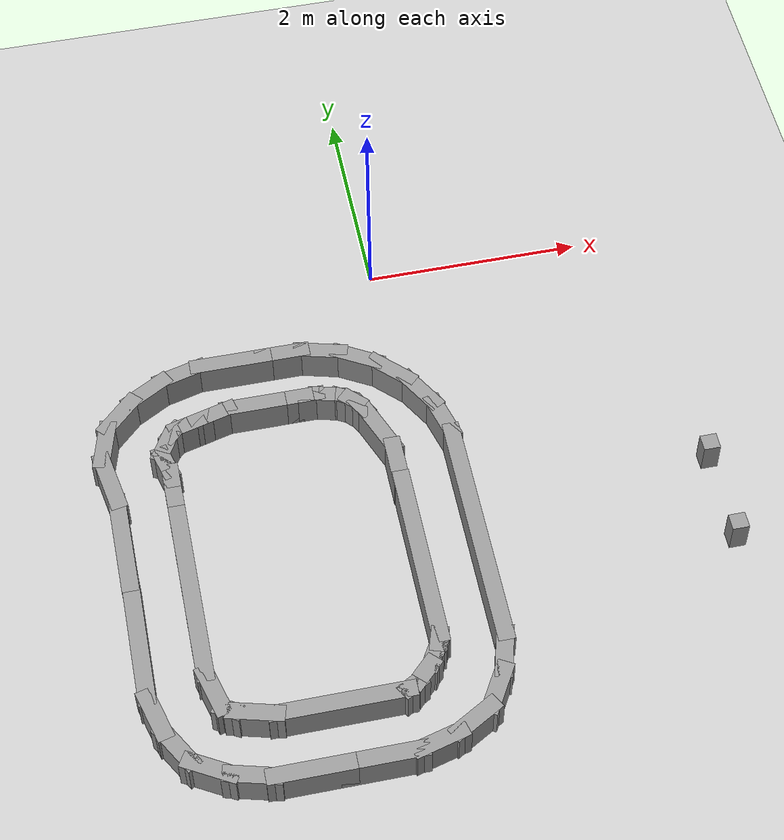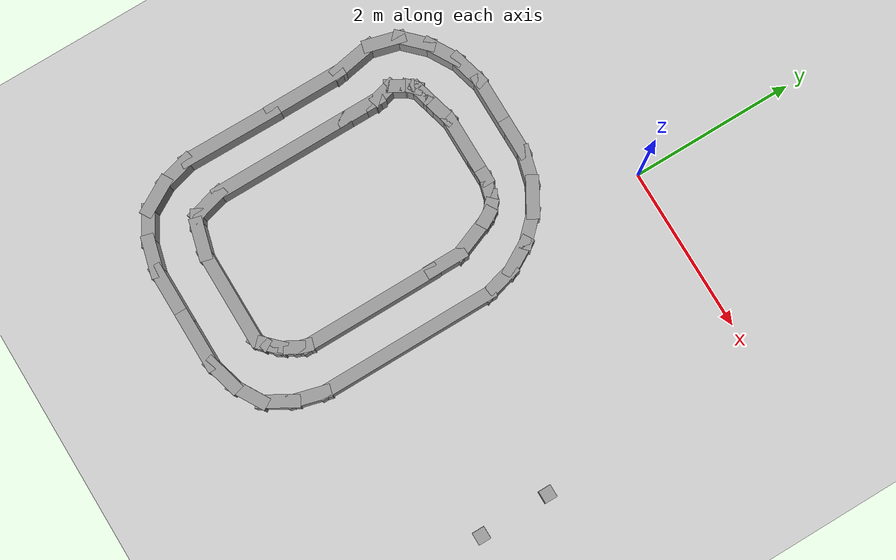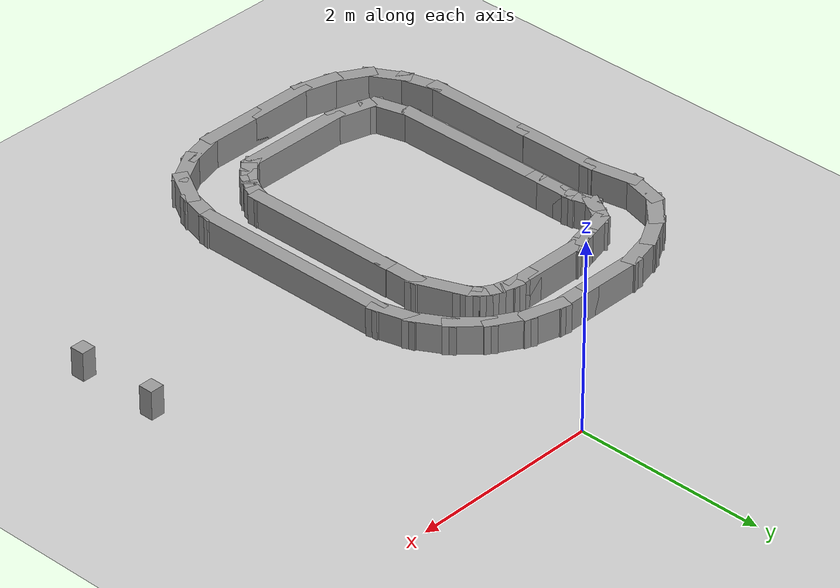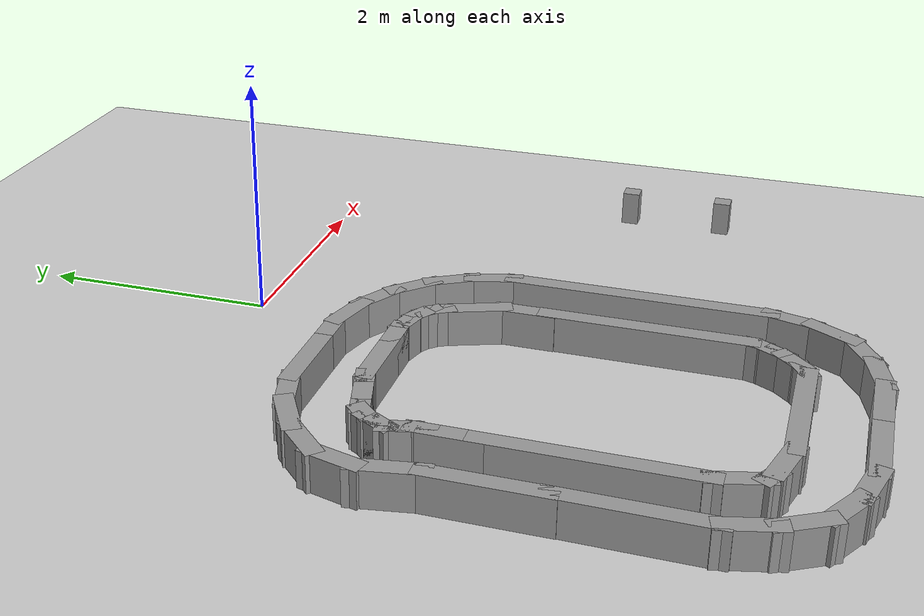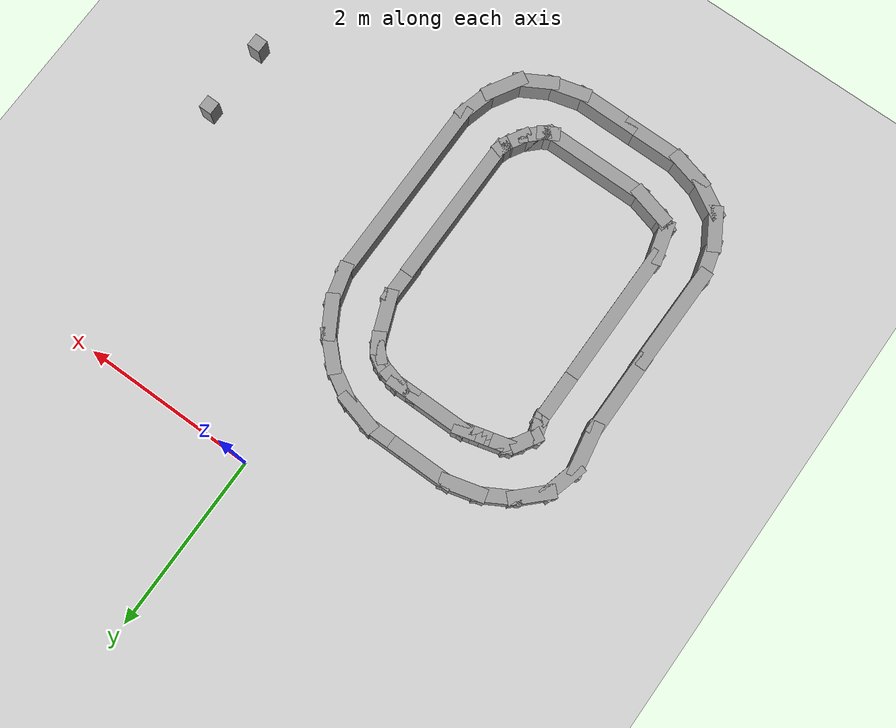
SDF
<?xml version='1.0'?>
<sdf version='1.7'>
  <world name="train_world2">
      <!-- 基础环境 -->
      <include>
          <uri>model://sun</uri>
      </include>

      <include>
          <uri>model://ground_plane</uri>
      </include>

      <!-- 世界物理配置 - 让地面更坚硬 -->
      <physics type="ode">
          <real_time_update_rate>1000</real_time_update_rate>
          <real_time_factor>1</real_time_factor>
          <ode>
              <solver>
                  <type>quick</type>
                  <iters>50</iters>
                  <precon>1</precon>
                  <use_dynamic_moi_rescaling>1</use_dynamic_moi_rescaling>
              </solver>
              <constraints>
                  <cfm>0.00001</cfm>
                  <erp>0.8</erp>
                  <contact_max_correcting_vel>100</contact_max_correcting_vel>
                  <contact_surface_layer>0.001</contact_surface_layer>
              </constraints>
          </ode>
      </physics>
  <model name='O_size'>
    <pose>-0.124916 -2.63931 0 0 -0 0</pose>
    <link name='Wall_0'>
      <collision name='Wall_0_Collision'>
        <geometry>
          <box>
            <size>1.0 0.15 0.3</size>
          </box>
        </geometry>
        <pose>0 0 0.15 0 -0 0</pose>
      </collision>
      <visual name='Wall_0_Visual'>
        <pose>0 0 0.15 0 -0 0</pose>
        <geometry>
          <box>
            <size>1.0 0.15 0.3</size>
          </box>
        </geometry>
        <material>
          <script>
            <uri>file://media/materials/scripts/gazebo.material</uri>
            <name>Gazebo/Grey</name>
          </script>
          <ambient>1 1 1 1</ambient>
        </material>
        <meta>
          <layer>0</layer>
        </meta>
      </visual>
      <pose>-2.57011 -0.115687 0.15 0 -0 -1.5708</pose>
    </link>
    <link name='Wall_10'>
      <collision name='Wall_10_Collision'>
        <geometry>
          <box>
            <size>0.5 0.15 0.3</size>
          </box>
        </geometry>
        <pose>0 0 0.15 0 -0 0</pose>
      </collision>
      <visual name='Wall_10_Visual'>
        <pose>0 0 0.15 0 -0 0</pose>
        <geometry>
          <box>
            <size>0.5 0.15 0.3</size>
          </box>
        </geometry>
        <material>
          <script>
            <uri>file://media/materials/scripts/gazebo.material</uri>
            <name>Gazebo/Grey</name>
          </script>
          <ambient>1 1 1 1</ambient>
        </material>
        <meta>
          <layer>0</layer>
        </meta>
      </visual>
      <pose>0.021314 -2.36937 0.15 0 -0 0.523599</pose>
    </link>
    <link name='Wall_100'>
      <collision name='Wall_100_Collision'>
        <geometry>
          <box>
            <size>0.25 0.15 0.3</size>
          </box>
        </geometry>
        <pose>0 0 0.15 0 -0 0</pose>
      </collision>
      <visual name='Wall_100_Visual'>
        <pose>0 0 0.15 0 -0 0</pose>
        <geometry>
          <box>
            <size>0.25 0.15 0.3</size>
          </box>
        </geometry>
        <material>
          <script>
            <uri>file://media/materials/scripts/gazebo.material</uri>
            <name>Gazebo/Grey</name>
          </script>
          <ambient>1 1 1 1</ambient>
        </material>
        <meta>
          <layer>0</layer>
        </meta>
      </visual>
      <pose>-0.720705 1.09886 0.15 0 -0 0</pose>
    </link>
    <link name='Wall_101'>
      <collision name='Wall_101_Collision'>
        <geometry>
          <box>
            <size>0.25 0.15 0.3</size>
          </box>
        </geometry>
        <pose>0 0 0.15 0 -0 0</pose>
      </collision>
      <visual name='Wall_101_Visual'>
        <pose>0 0 0.15 0 -0 0</pose>
        <geometry>
          <box>
            <size>0.25 0.15 0.3</size>
          </box>
        </geometry>
        <material>
          <script>
            <uri>file://media/materials/scripts/gazebo.material</uri>
            <name>Gazebo/Grey</name>
          </script>
          <ambient>1 1 1 1</ambient>
        </material>
        <meta>
          <layer>0</layer>
        </meta>
      </visual>
      <pose>-0.622409 1.08592 0.15 0 -0 -0.261799</pose>
    </link>
    <link name='Wall_102'>
      <collision name='Wall_102_Collision'>
        <geometry>
          <box>
            <size>0.25 0.15 0.3</size>
          </box>
        </geometry>
        <pose>0 0 0.15 0 -0 0</pose>
      </collision>
      <visual name='Wall_102_Visual'>
        <pose>0 0 0.15 0 -0 0</pose>
        <geometry>
          <box>
            <size>0.25 0.15 0.3</size>
          </box>
        </geometry>
        <material>
          <script>
            <uri>file://media/materials/scripts/gazebo.material</uri>
            <name>Gazebo/Grey</name>
          </script>
          <ambient>1 1 1 1</ambient>
        </material>
        <meta>
          <layer>0</layer>
        </meta>
      </visual>
      <pose>-0.525816 1.06004 0.15 0 -0 -0.261799</pose>
    </link>
    <link name='Wall_103'>
      <collision name='Wall_103_Collision'>
        <geometry>
          <box>
            <size>0.25 0.15 0.3</size>
          </box>
        </geometry>
        <pose>0 0 0.15 0 -0 0</pose>
      </collision>
      <visual name='Wall_103_Visual'>
        <pose>0 0 0.15 0 -0 0</pose>
        <geometry>
          <box>
            <size>0.25 0.15 0.3</size>
          </box>
        </geometry>
        <material>
          <script>
            <uri>file://media/materials/scripts/gazebo.material</uri>
            <name>Gazebo/Grey</name>
          </script>
          <ambient>1 1 1 1</ambient>
        </material>
        <meta>
          <layer>0</layer>
        </meta>
      </visual>
      <pose>-0.434218 1.0221 0.15 0 -0 -0.523599</pose>
    </link>
    <link name='Wall_104'>
      <collision name='Wall_104_Collision'>
        <geometry>
          <box>
            <size>0.25 0.15 0.3</size>
          </box>
        </geometry>
        <pose>0 0 0.15 0 -0 0</pose>
      </collision>
      <visual name='Wall_104_Visual'>
        <pose>0 0 0.15 0 -0 0</pose>
        <geometry>
          <box>
            <size>0.25 0.15 0.3</size>
          </box>
        </geometry>
        <material>
          <script>
            <uri>file://media/materials/scripts/gazebo.material</uri>
            <name>Gazebo/Grey</name>
          </script>
          <ambient>1 1 1 1</ambient>
        </material>
        <meta>
          <layer>0</layer>
        </meta>
      </visual>
      <pose>-0.355562 0.961745 0.15 0 -0 -0.785398</pose>
    </link>
    <link name='Wall_105'>
      <collision name='Wall_105_Collision'>
        <geometry>
          <box>
            <size>0.25 0.15 0.3</size>
          </box>
        </geometry>
        <pose>0 0 0.15 0 -0 0</pose>
      </collision>
      <visual name='Wall_105_Visual'>
        <pose>0 0 0.15 0 -0 0</pose>
        <geometry>
          <box>
            <size>0.25 0.15 0.3</size>
          </box>
        </geometry>
        <material>
          <script>
            <uri>file://media/materials/scripts/gazebo.material</uri>
            <name>Gazebo/Grey</name>
          </script>
          <ambient>1 1 1 1</ambient>
        </material>
        <meta>
          <layer>0</layer>
        </meta>
      </visual>
      <pose>-0.295206 0.883089 0.15 0 -0 -1.0472</pose>
    </link>
    <link name='Wall_106'>
      <collision name='Wall_106_Collision'>
        <geometry>
          <box>
            <size>0.60643 0.15 0.3</size>
          </box>
        </geometry>
        <pose>0 0 0.15 0 -0 0</pose>
      </collision>
      <visual name='Wall_106_Visual'>
        <pose>0 0 0.15 0 -0 0</pose>
        <geometry>
          <box>
            <size>0.60643 0.15 0.3</size>
          </box>
        </geometry>
        <material>
          <script>
            <uri>file://media/materials/scripts/gazebo.material</uri>
            <name>Gazebo/Grey</name>
          </script>
          <ambient>1 1 1 1</ambient>
        </material>
        <meta>
          <layer>0</layer>
        </meta>
      </visual>
      <pose>-0.186826 0.62735 0.15 0 -0 -1.19678</pose>
    </link>
    <link name='Wall_11'>
      <collision name='Wall_11_Collision'>
        <geometry>
          <box>
            <size>0.5 0.15 0.3</size>
          </box>
        </geometry>
        <pose>0 0 0.15 0 -0 0</pose>
      </collision>
      <visual name='Wall_11_Visual'>
        <pose>0 0 0.15 0 -0 0</pose>
        <geometry>
          <box>
            <size>0.5 0.15 0.3</size>
          </box>
        </geometry>
        <material>
          <script>
            <uri>file://media/materials/scripts/gazebo.material</uri>
            <name>Gazebo/Grey</name>
          </script>
          <ambient>1 1 1 1</ambient>
        </material>
        <meta>
          <layer>0</layer>
        </meta>
      </visual>
      <pose>0.260368 -2.13032 0.15 0 -0 1.0472</pose>
    </link>
    <link name='Wall_12'>
      <collision name='Wall_12_Collision'>
        <geometry>
          <box>
            <size>0.5 0.15 0.3</size>
          </box>
        </geometry>
        <pose>0 0 0.15 0 -0 0</pose>
      </collision>
      <visual name='Wall_12_Visual'>
        <pose>0 0 0.15 0 -0 0</pose>
        <geometry>
          <box>
            <size>0.5 0.15 0.3</size>
          </box>
        </geometry>
        <material>
          <script>
            <uri>file://media/materials/scripts/gazebo.material</uri>
            <name>Gazebo/Grey</name>
          </script>
          <ambient>1 1 1 1</ambient>
        </material>
        <meta>
          <layer>0</layer>
        </meta>
      </visual>
      <pose>0.393162 -1.80972 0.15 0 -0 1.309</pose>
    </link>
    <link name='Wall_13'>
      <collision name='Wall_13_Collision'>
        <geometry>
          <box>
            <size>2.25 0.15 0.3</size>
          </box>
        </geometry>
        <pose>0 0 0.15 0 -0 0</pose>
      </collision>
      <visual name='Wall_13_Visual'>
        <pose>0 0 0.15 0 -0 0</pose>
        <geometry>
          <box>
            <size>2.25 0.15 0.3</size>
          </box>
        </geometry>
        <material>
          <script>
            <uri>file://media/materials/scripts/gazebo.material</uri>
            <name>Gazebo/Grey</name>
          </script>
          <ambient>1 1 1 1</ambient>
        </material>
        <meta>
          <layer>0</layer>
        </meta>
      </visual>
      <pose>0.438455 -0.590687 0.15 0 -0 1.5708</pose>
    </link>
    <link name='Wall_14'>
      <collision name='Wall_14_Collision'>
        <geometry>
          <box>
            <size>0.5 0.15 0.3</size>
          </box>
        </geometry>
        <pose>0 0 0.15 0 -0 0</pose>
      </collision>
      <visual name='Wall_14_Visual'>
        <pose>0 0 0.15 0 -0 0</pose>
        <geometry>
          <box>
            <size>0.5 0.15 0.3</size>
          </box>
        </geometry>
        <material>
          <script>
            <uri>file://media/materials/scripts/gazebo.material</uri>
            <name>Gazebo/Grey</name>
          </script>
          <ambient>1 1 1 1</ambient>
        </material>
        <meta>
          <layer>0</layer>
        </meta>
      </visual>
      <pose>0.393162 0.62835 0.15 0 -0 1.8326</pose>
    </link>
    <link name='Wall_15'>
      <collision name='Wall_15_Collision'>
        <geometry>
          <box>
            <size>0.5 0.15 0.3</size>
          </box>
        </geometry>
        <pose>0 0 0.15 0 -0 0</pose>
      </collision>
      <visual name='Wall_15_Visual'>
        <pose>0 0 0.15 0 -0 0</pose>
        <geometry>
          <box>
            <size>0.5 0.15 0.3</size>
          </box>
        </geometry>
        <material>
          <script>
            <uri>file://media/materials/scripts/gazebo.material</uri>
            <name>Gazebo/Grey</name>
          </script>
          <ambient>1 1 1 1</ambient>
        </material>
        <meta>
          <layer>0</layer>
        </meta>
      </visual>
      <pose>0.260368 0.948941 0.15 0 -0 2.0944</pose>
    </link>
    <link name='Wall_16'>
      <collision name='Wall_16_Collision'>
        <geometry>
          <box>
            <size>0.5 0.15 0.3</size>
          </box>
        </geometry>
        <pose>0 0 0.15 0 -0 0</pose>
      </collision>
      <visual name='Wall_16_Visual'>
        <pose>0 0 0.15 0 -0 0</pose>
        <geometry>
          <box>
            <size>0.5 0.15 0.3</size>
          </box>
        </geometry>
        <material>
          <script>
            <uri>file://media/materials/scripts/gazebo.material</uri>
            <name>Gazebo/Grey</name>
          </script>
          <ambient>1 1 1 1</ambient>
        </material>
        <meta>
          <layer>0</layer>
        </meta>
      </visual>
      <pose>0.049125 1.22424 0.15 0 -0 2.35619</pose>
    </link>
    <link name='Wall_17'>
      <collision name='Wall_17_Collision'>
        <geometry>
          <box>
            <size>0.5 0.15 0.3</size>
          </box>
        </geometry>
        <pose>0 0 0.15 0 -0 0</pose>
      </collision>
      <visual name='Wall_17_Visual'>
        <pose>0 0 0.15 0 -0 0</pose>
        <geometry>
          <box>
            <size>0.5 0.15 0.3</size>
          </box>
        </geometry>
        <material>
          <script>
            <uri>file://media/materials/scripts/gazebo.material</uri>
            <name>Gazebo/Grey</name>
          </script>
          <ambient>1 1 1 1</ambient>
        </material>
        <meta>
          <layer>0</layer>
        </meta>
      </visual>
      <pose>-0.226173 1.43548 0.15 0 -0 2.61799</pose>
    </link>
    <link name='Wall_18'>
      <collision name='Wall_18_Collision'>
        <geometry>
          <box>
            <size>0.5 0.15 0.3</size>
          </box>
        </geometry>
        <pose>0 0 0.15 0 -0 0</pose>
      </collision>
      <visual name='Wall_18_Visual'>
        <pose>0 0 0.15 0 -0 0</pose>
        <geometry>
          <box>
            <size>0.5 0.15 0.3</size>
          </box>
        </geometry>
        <material>
          <script>
            <uri>file://media/materials/scripts/gazebo.material</uri>
            <name>Gazebo/Grey</name>
          </script>
          <ambient>1 1 1 1</ambient>
        </material>
        <meta>
          <layer>0</layer>
        </meta>
      </visual>
      <pose>-0.546765 1.56828 0.15 0 -0 2.87979</pose>
    </link>
    <link name='Wall_19'>
      <collision name='Wall_19_Collision'>
        <geometry>
          <box>
            <size>0.5 0.15 0.3</size>
          </box>
        </geometry>
        <pose>0 0 0.15 0 -0 0</pose>
      </collision>
      <visual name='Wall_19_Visual'>
        <pose>0 0 0.15 0 -0 0</pose>
        <geometry>
          <box>
            <size>0.5 0.15 0.3</size>
          </box>
        </geometry>
        <material>
          <script>
            <uri>file://media/materials/scripts/gazebo.material</uri>
            <name>Gazebo/Grey</name>
          </script>
          <ambient>1 1 1 1</ambient>
        </material>
        <meta>
          <layer>0</layer>
        </meta>
      </visual>
      <pose>-0.890802 1.61357 0.15 0 -0 3.14159</pose>
    </link>
    <link name='Wall_2'>
      <collision name='Wall_2_Collision'>
        <geometry>
          <box>
            <size>1.25 0.15 0.3</size>
          </box>
        </geometry>
        <pose>0 0 0.15 0 -0 0</pose>
      </collision>
      <visual name='Wall_2_Visual'>
        <pose>0 0 0.15 0 -0 0</pose>
        <geometry>
          <box>
            <size>1.25 0.15 0.3</size>
          </box>
        </geometry>
        <material>
          <script>
            <uri>file://media/materials/scripts/gazebo.material</uri>
            <name>Gazebo/Grey</name>
          </script>
          <ambient>1 1 1 1</ambient>
        </material>
        <meta>
          <layer>0</layer>
        </meta>
      </visual>
      <pose>-2.57011 -1.09069 0.15 0 -0 -1.57984</pose>
    </link>
    <link name='Wall_20'>
      <collision name='Wall_20_Collision'>
        <geometry>
          <box>
            <size>0.75 0.15 0.3</size>
          </box>
        </geometry>
        <pose>0 0 0.15 0 -0 0</pose>
      </collision>
      <visual name='Wall_20_Visual'>
        <pose>0 0 0.15 0 -0 0</pose>
        <geometry>
          <box>
            <size>0.75 0.15 0.3</size>
          </box>
        </geometry>
        <material>
          <script>
            <uri>file://media/materials/scripts/gazebo.material</uri>
            <name>Gazebo/Grey</name>
          </script>
          <ambient>1 1 1 1</ambient>
        </material>
        <meta>
          <layer>0</layer>
        </meta>
      </visual>
      <pose>-1.3658 1.61357 0.15 0 -0 3.14159</pose>
    </link>
    <link name='Wall_21'>
      <collision name='Wall_21_Collision'>
        <geometry>
          <box>
            <size>0.5 0.15 0.3</size>
          </box>
        </geometry>
        <pose>0 0 0.15 0 -0 0</pose>
      </collision>
      <visual name='Wall_21_Visual'>
        <pose>0 0 0.15 0 -0 0</pose>
        <geometry>
          <box>
            <size>0.5 0.15 0.3</size>
          </box>
        </geometry>
        <material>
          <script>
            <uri>file://media/materials/scripts/gazebo.material</uri>
            <name>Gazebo/Grey</name>
          </script>
          <ambient>1 1 1 1</ambient>
        </material>
        <meta>
          <layer>0</layer>
        </meta>
      </visual>
      <pose>-1.83484 1.56828 0.15 0 -0 -2.87979</pose>
    </link>
    <link name='Wall_22'>
      <collision name='Wall_22_Collision'>
        <geometry>
          <box>
            <size>0.5 0.15 0.3</size>
          </box>
        </geometry>
        <pose>0 0 0.15 0 -0 0</pose>
      </collision>
      <visual name='Wall_22_Visual'>
        <pose>0 0 0.15 0 -0 0</pose>
        <geometry>
          <box>
            <size>0.5 0.15 0.3</size>
          </box>
        </geometry>
        <material>
          <script>
            <uri>file://media/materials/scripts/gazebo.material</uri>
            <name>Gazebo/Grey</name>
          </script>
          <ambient>1 1 1 1</ambient>
        </material>
        <meta>
          <layer>0</layer>
        </meta>
      </visual>
      <pose>-2.15543 1.43548 0.15 0 -0 -2.61799</pose>
    </link>
    <link name='Wall_23'>
      <collision name='Wall_23_Collision'>
        <geometry>
          <box>
            <size>0.5 0.15 0.3</size>
          </box>
        </geometry>
        <pose>0 0 0.15 0 -0 0</pose>
      </collision>
      <visual name='Wall_23_Visual'>
        <pose>0 0 0.15 0 -0 0</pose>
        <geometry>
          <box>
            <size>0.5 0.15 0.3</size>
          </box>
        </geometry>
        <material>
          <script>
            <uri>file://media/materials/scripts/gazebo.material</uri>
            <name>Gazebo/Grey</name>
          </script>
          <ambient>1 1 1 1</ambient>
        </material>
        <meta>
          <layer>0</layer>
        </meta>
      </visual>
      <pose>-2.43073 1.22424 0.15 0 -0 -2.35619</pose>
    </link>
    <link name='Wall_24'>
      <collision name='Wall_24_Collision'>
        <geometry>
          <box>
            <size>0.5 0.15 0.3</size>
          </box>
        </geometry>
        <pose>0 0 0.15 0 -0 0</pose>
      </collision>
      <visual name='Wall_24_Visual'>
        <pose>0 0 0.15 0 -0 0</pose>
        <geometry>
          <box>
            <size>0.5 0.15 0.3</size>
          </box>
        </geometry>
        <material>
          <script>
            <uri>file://media/materials/scripts/gazebo.material</uri>
            <name>Gazebo/Grey</name>
          </script>
          <ambient>1 1 1 1</ambient>
        </material>
        <meta>
          <layer>0</layer>
        </meta>
      </visual>
      <pose>-2.59977 0.931459 0.15 0 -0 -1.8326</pose>
    </link>
    <link name='Wall_25'>
      <collision name='Wall_25_Collision'>
        <geometry>
          <box>
            <size>0.610103 0.15 0.3</size>
          </box>
        </geometry>
        <pose>0 0 0.15 0 -0 0</pose>
      </collision>
      <visual name='Wall_25_Visual'>
        <pose>0 0 0.15 0 -0 0</pose>
        <geometry>
          <box>
            <size>0.610103 0.15 0.3</size>
          </box>
        </geometry>
        <material>
          <script>
            <uri>file://media/materials/scripts/gazebo.material</uri>
            <name>Gazebo/Grey</name>
          </script>
          <ambient>1 1 1 1</ambient>
        </material>
        <meta>
          <layer>0</layer>
        </meta>
      </visual>
      <pose>-2.6051 0.535867 0.15 0 -0 -1.39621</pose>
    </link>
    <link name='Wall_27'>
      <collision name='Wall_27_Collision'>
        <geometry>
          <box>
            <size>0.15 0.15 0.3</size>
          </box>
        </geometry>
        <pose>0 0 0.15 0 -0 0</pose>
      </collision>
      <visual name='Wall_27_Visual'>
        <pose>0 0 0.15 0 -0 0</pose>
        <geometry>
          <box>
            <size>0.15 0.15 0.3</size>
          </box>
        </geometry>
        <material>
          <script>
            <uri>file://media/materials/scripts/gazebo.material</uri>
            <name>Gazebo/Grey</name>
          </script>
          <ambient>1 1 1 1</ambient>
        </material>
        <meta>
          <layer>0</layer>
        </meta>
      </visual>
      <pose>2.65197 -0.130937 0.15 0 -0 0</pose>
    </link>
    <link name='Wall_3'>
      <collision name='Wall_3_Collision'>
        <geometry>
          <box>
            <size>0.5 0.15 0.3</size>
          </box>
        </geometry>
        <pose>0 0 0.15 0 -0 0</pose>
      </collision>
      <visual name='Wall_3_Visual'>
        <pose>0 0 0.15 0 -0 0</pose>
        <geometry>
          <box>
            <size>0.5 0.15 0.3</size>
          </box>
        </geometry>
        <material>
          <script>
            <uri>file://media/materials/scripts/gazebo.material</uri>
            <name>Gazebo/Grey</name>
          </script>
          <ambient>1 1 1 1</ambient>
        </material>
        <meta>
          <layer>0</layer>
        </meta>
      </visual>
      <pose>-2.52979 -1.80972 0.15 0 -0 -1.309</pose>
    </link>
    <link name='Wall_35'>
      <collision name='Wall_35_Collision'>
        <geometry>
          <box>
            <size>0.15 0.15 0.3</size>
          </box>
        </geometry>
        <pose>0 0 0.15 0 -0 0</pose>
      </collision>
      <visual name='Wall_35_Visual'>
        <pose>0 0 0.15 0 -0 0</pose>
        <geometry>
          <box>
            <size>0.15 0.15 0.3</size>
          </box>
        </geometry>
        <material>
          <script>
            <uri>file://media/materials/scripts/gazebo.material</uri>
            <name>Gazebo/Grey</name>
          </script>
          <ambient>1 1 1 1</ambient>
        </material>
        <meta>
          <layer>0</layer>
        </meta>
      </visual>
      <pose>2.66192 -0.980937 0.15 0 -0 0</pose>
    </link>
    <link name='Wall_4'>
      <collision name='Wall_4_Collision'>
        <geometry>
          <box>
            <size>0.5 0.15 0.3</size>
          </box>
        </geometry>
        <pose>0 0 0.15 0 -0 0</pose>
      </collision>
      <visual name='Wall_4_Visual'>
        <pose>0 0 0.15 0 -0 0</pose>
        <geometry>
          <box>
            <size>0.5 0.15 0.3</size>
          </box>
        </geometry>
        <material>
          <script>
            <uri>file://media/materials/scripts/gazebo.material</uri>
            <name>Gazebo/Grey</name>
          </script>
          <ambient>1 1 1 1</ambient>
        </material>
        <meta>
          <layer>0</layer>
        </meta>
      </visual>
      <pose>-2.397 -2.13032 0.15 0 -0 -1.0472</pose>
    </link>
    <link name='Wall_48'>
      <collision name='Wall_48_Collision'>
        <geometry>
          <box>
            <size>1.75 0.15 0.3</size>
          </box>
        </geometry>
        <pose>0 0 0.15 0 -0 0</pose>
      </collision>
      <visual name='Wall_48_Visual'>
        <pose>0 0 0.15 0 -0 0</pose>
        <geometry>
          <box>
            <size>1.75 0.15 0.3</size>
          </box>
        </geometry>
        <material>
          <script>
            <uri>file://media/materials/scripts/gazebo.material</uri>
            <name>Gazebo/Grey</name>
          </script>
          <ambient>1 1 1 1</ambient>
        </material>
        <meta>
          <layer>0</layer>
        </meta>
      </visual>
      <pose>-2.07261 -0.717646 0.15 0 -0 -1.5708</pose>
    </link>
    <link name='Wall_5'>
      <collision name='Wall_5_Collision'>
        <geometry>
          <box>
            <size>0.5 0.15 0.3</size>
          </box>
        </geometry>
        <pose>0 0 0.15 0 -0 0</pose>
      </collision>
      <visual name='Wall_5_Visual'>
        <pose>0 0 0.15 0 -0 0</pose>
        <geometry>
          <box>
            <size>0.5 0.15 0.3</size>
          </box>
        </geometry>
        <material>
          <script>
            <uri>file://media/materials/scripts/gazebo.material</uri>
            <name>Gazebo/Grey</name>
          </script>
          <ambient>1 1 1 1</ambient>
        </material>
        <meta>
          <layer>0</layer>
        </meta>
      </visual>
      <pose>-2.15794 -2.36937 0.15 0 -0 -0.523599</pose>
    </link>
    <link name='Wall_50'>
      <collision name='Wall_50_Collision'>
        <geometry>
          <box>
            <size>0.5 0.15 0.3</size>
          </box>
        </geometry>
        <pose>0 0 0.15 0 -0 0</pose>
      </collision>
      <visual name='Wall_50_Visual'>
        <pose>0 0 0.15 0 -0 0</pose>
        <geometry>
          <box>
            <size>0.5 0.15 0.3</size>
          </box>
        </geometry>
        <material>
          <script>
            <uri>file://media/materials/scripts/gazebo.material</uri>
            <name>Gazebo/Grey</name>
          </script>
          <ambient>1 1 1 1</ambient>
        </material>
        <meta>
          <layer>0</layer>
        </meta>
      </visual>
      <pose>-2.02732 -1.68668 0.15 0 -0 -1.309</pose>
    </link>
    <link name='Wall_57'>
      <collision name='Wall_57_Collision'>
        <geometry>
          <box>
            <size>0.25 0.15 0.3</size>
          </box>
        </geometry>
        <pose>0 0 0.15 0 -0 0</pose>
      </collision>
      <visual name='Wall_57_Visual'>
        <pose>0 0 0.15 0 -0 0</pose>
        <geometry>
          <box>
            <size>0.25 0.15 0.3</size>
          </box>
        </geometry>
        <material>
          <script>
            <uri>file://media/materials/scripts/gazebo.material</uri>
            <name>Gazebo/Grey</name>
          </script>
          <ambient>1 1 1 1</ambient>
        </material>
        <meta>
          <layer>0</layer>
        </meta>
      </visual>
      <pose>-1.93873 -1.88072 0.15 0 -0 -0.523599</pose>
    </link>
    <link name='Wall_58'>
      <collision name='Wall_58_Collision'>
        <geometry>
          <box>
            <size>0.5 0.15 0.3</size>
          </box>
        </geometry>
        <pose>0 0 0.15 0 -0 0</pose>
      </collision>
      <visual name='Wall_58_Visual'>
        <pose>0 0 0.15 0 -0 0</pose>
        <geometry>
          <box>
            <size>0.5 0.15 0.3</size>
          </box>
        </geometry>
        <material>
          <script>
            <uri>file://media/materials/scripts/gazebo.material</uri>
            <name>Gazebo/Grey</name>
          </script>
          <ambient>1 1 1 1</ambient>
        </material>
        <meta>
          <layer>0</layer>
        </meta>
      </visual>
      <pose>-1.72639 -1.95101 0.15 0 -0 -0.261799</pose>
    </link>
    <link name='Wall_59'>
      <collision name='Wall_59_Collision'>
        <geometry>
          <box>
            <size>1.25 0.15 0.3</size>
          </box>
        </geometry>
        <pose>0 0 0.15 0 -0 0</pose>
      </collision>
      <visual name='Wall_59_Visual'>
        <pose>0 0 0.15 0 -0 0</pose>
        <geometry>
          <box>
            <size>1.25 0.15 0.3</size>
          </box>
        </geometry>
        <material>
          <script>
            <uri>file://media/materials/scripts/gazebo.material</uri>
            <name>Gazebo/Grey</name>
          </script>
          <ambient>1 1 1 1</ambient>
        </material>
        <meta>
          <layer>0</layer>
        </meta>
      </visual>
      <pose>-1.00735 -1.99631 0.15 0 -0 0</pose>
    </link>
    <link name='Wall_6'>
      <collision name='Wall_6_Collision'>
        <geometry>
          <box>
            <size>0.5 0.15 0.3</size>
          </box>
        </geometry>
        <pose>0 0 0.15 0 -0 0</pose>
      </collision>
      <visual name='Wall_6_Visual'>
        <pose>0 0 0.15 0 -0 0</pose>
        <geometry>
          <box>
            <size>0.5 0.15 0.3</size>
          </box>
        </geometry>
        <material>
          <script>
            <uri>file://media/materials/scripts/gazebo.material</uri>
            <name>Gazebo/Grey</name>
          </script>
          <ambient>1 1 1 1</ambient>
        </material>
        <meta>
          <layer>0</layer>
        </meta>
      </visual>
      <pose>-1.83735 -2.50216 0.15 0 -0 -0.261799</pose>
    </link>
    <link name='Wall_7'>
      <collision name='Wall_7_Collision'>
        <geometry>
          <box>
            <size>0.75 0.15 0.3</size>
          </box>
        </geometry>
        <pose>0 0 0.15 0 -0 0</pose>
      </collision>
      <visual name='Wall_7_Visual'>
        <pose>0 0 0.15 0 -0 0</pose>
        <geometry>
          <box>
            <size>0.75 0.15 0.3</size>
          </box>
        </geometry>
        <material>
          <script>
            <uri>file://media/materials/scripts/gazebo.material</uri>
            <name>Gazebo/Grey</name>
          </script>
          <ambient>1 1 1 1</ambient>
        </material>
        <meta>
          <layer>0</layer>
        </meta>
      </visual>
      <pose>-1.36831 -2.54746 0.15 0 -0 0</pose>
    </link>
    <link name='Wall_75'>
      <collision name='Wall_75_Collision'>
        <geometry>
          <box>
            <size>0.25 0.15 0.3</size>
          </box>
        </geometry>
        <pose>0 0 0.15 0 -0 0</pose>
      </collision>
      <visual name='Wall_75_Visual'>
        <pose>0 0 0.15 0 -0 0</pose>
        <geometry>
          <box>
            <size>0.25 0.15 0.3</size>
          </box>
        </geometry>
        <material>
          <script>
            <uri>file://media/materials/scripts/gazebo.material</uri>
            <name>Gazebo/Grey</name>
          </script>
          <ambient>1 1 1 1</ambient>
        </material>
        <meta>
          <layer>0</layer>
        </meta>
      </visual>
      <pose>-0.41405 -1.97131 0.15 0 -0 0.523599</pose>
    </link>
    <link name='Wall_76'>
      <collision name='Wall_76_Collision'>
        <geometry>
          <box>
            <size>0.25 0.15 0.3</size>
          </box>
        </geometry>
        <pose>0 0 0.15 0 -0 0</pose>
      </collision>
      <visual name='Wall_76_Visual'>
        <pose>0 0 0.15 0 -0 0</pose>
        <geometry>
          <box>
            <size>0.25 0.15 0.3</size>
          </box>
        </geometry>
        <material>
          <script>
            <uri>file://media/materials/scripts/gazebo.material</uri>
            <name>Gazebo/Grey</name>
          </script>
          <ambient>1 1 1 1</ambient>
        </material>
        <meta>
          <layer>0</layer>
        </meta>
      </visual>
      <pose>-0.335393 -1.91095 0.15 0 -0 0.785398</pose>
    </link>
    <link name='Wall_77'>
      <collision name='Wall_77_Collision'>
        <geometry>
          <box>
            <size>0.25 0.15 0.3</size>
          </box>
        </geometry>
        <pose>0 0 0.15 0 -0 0</pose>
      </collision>
      <visual name='Wall_77_Visual'>
        <pose>0 0 0.15 0 -0 0</pose>
        <geometry>
          <box>
            <size>0.25 0.15 0.3</size>
          </box>
        </geometry>
        <material>
          <script>
            <uri>file://media/materials/scripts/gazebo.material</uri>
            <name>Gazebo/Grey</name>
          </script>
          <ambient>1 1 1 1</ambient>
        </material>
        <meta>
          <layer>0</layer>
        </meta>
      </visual>
      <pose>-0.264683 -1.84024 0.15 0 -0 0.785398</pose>
    </link>
    <link name='Wall_78'>
      <collision name='Wall_78_Collision'>
        <geometry>
          <box>
            <size>0.25 0.15 0.3</size>
          </box>
        </geometry>
        <pose>0 0 0.15 0 -0 0</pose>
      </collision>
      <visual name='Wall_78_Visual'>
        <pose>0 0 0.15 0 -0 0</pose>
        <geometry>
          <box>
            <size>0.25 0.15 0.3</size>
          </box>
        </geometry>
        <material>
          <script>
            <uri>file://media/materials/scripts/gazebo.material</uri>
            <name>Gazebo/Grey</name>
          </script>
          <ambient>1 1 1 1</ambient>
        </material>
        <meta>
          <layer>0</layer>
        </meta>
      </visual>
      <pose>-0.204327 -1.76158 0.15 0 -0 1.0472</pose>
    </link>
    <link name='Wall_79'>
      <collision name='Wall_79_Collision'>
        <geometry>
          <box>
            <size>0.25 0.15 0.3</size>
          </box>
        </geometry>
        <pose>0 0 0.15 0 -0 0</pose>
      </collision>
      <visual name='Wall_79_Visual'>
        <pose>0 0 0.15 0 -0 0</pose>
        <geometry>
          <box>
            <size>0.25 0.15 0.3</size>
          </box>
        </geometry>
        <material>
          <script>
            <uri>file://media/materials/scripts/gazebo.material</uri>
            <name>Gazebo/Grey</name>
          </script>
          <ambient>1 1 1 1</ambient>
        </material>
        <meta>
          <layer>0</layer>
        </meta>
      </visual>
      <pose>-0.154327 -1.67498 0.15 0 -0 1.0472</pose>
    </link>
    <link name='Wall_8'>
      <collision name='Wall_8_Collision'>
        <geometry>
          <box>
            <size>0.75 0.15 0.3</size>
          </box>
        </geometry>
        <pose>0 0 0.15 0 -0 0</pose>
      </collision>
      <visual name='Wall_8_Visual'>
        <pose>0 0 0.15 0 -0 0</pose>
        <geometry>
          <box>
            <size>0.75 0.15 0.3</size>
          </box>
        </geometry>
        <material>
          <script>
            <uri>file://media/materials/scripts/gazebo.material</uri>
            <name>Gazebo/Grey</name>
          </script>
          <ambient>1 1 1 1</ambient>
        </material>
        <meta>
          <layer>0</layer>
        </meta>
      </visual>
      <pose>-0.768315 -2.54746 0.15 0 -0 0</pose>
    </link>
    <link name='Wall_80'>
      <collision name='Wall_80_Collision'>
        <geometry>
          <box>
            <size>0.237364 0.15 0.3</size>
          </box>
        </geometry>
        <pose>0 0 0.15 0 -0 0</pose>
      </collision>
      <visual name='Wall_80_Visual'>
        <pose>0 0 0.15 0 -0 0</pose>
        <geometry>
          <box>
            <size>0.237364 0.15 0.3</size>
          </box>
        </geometry>
        <material>
          <script>
            <uri>file://media/materials/scripts/gazebo.material</uri>
            <name>Gazebo/Grey</name>
          </script>
          <ambient>1 1 1 1</ambient>
        </material>
        <meta>
          <layer>0</layer>
        </meta>
      </visual>
      <pose>-0.116387 -1.58996 0.15 0 -0 1.27003</pose>
    </link>
    <link name='Wall_81'>
      <collision name='Wall_81_Collision'>
        <geometry>
          <box>
            <size>1.75 0.15 0.3</size>
          </box>
        </geometry>
        <pose>0 0 0.15 0 -0 0</pose>
      </collision>
      <visual name='Wall_81_Visual'>
        <pose>0 0 0.15 0 -0 0</pose>
        <geometry>
          <box>
            <size>1.75 0.15 0.3</size>
          </box>
        </geometry>
        <material>
          <script>
            <uri>file://media/materials/scripts/gazebo.material</uri>
            <name>Gazebo/Grey</name>
          </script>
          <ambient>1 1 1 1</ambient>
        </material>
        <meta>
          <layer>0</layer>
        </meta>
      </visual>
      <pose>-0.09687 -0.748238 0.15 0 -0 1.5708</pose>
    </link>
    <link name='Wall_82'>
      <collision name='Wall_82_Collision'>
        <geometry>
          <box>
            <size>0.513686 0.15 0.3</size>
          </box>
        </geometry>
        <pose>0 0 0.15 0 -0 0</pose>
      </collision>
      <visual name='Wall_82_Visual'>
        <pose>0 0 0.15 0 -0 0</pose>
        <geometry>
          <box>
            <size>0.513686 0.15 0.3</size>
          </box>
        </geometry>
        <material>
          <script>
            <uri>file://media/materials/scripts/gazebo.material</uri>
            <name>Gazebo/Grey</name>
          </script>
          <ambient>1 1 1 1</ambient>
        </material>
        <meta>
          <layer>0</layer>
        </meta>
      </visual>
      <pose>-0.103446 0.233337 0.15 0 -0 1.5708</pose>
    </link>
    <link name='Wall_85'>
      <collision name='Wall_85_Collision'>
        <geometry>
          <box>
            <size>0.5 0.15 0.3</size>
          </box>
        </geometry>
        <pose>0 0 0.15 0 -0 0</pose>
      </collision>
      <visual name='Wall_85_Visual'>
        <pose>0 0 0.15 0 -0 0</pose>
        <geometry>
          <box>
            <size>0.5 0.15 0.3</size>
          </box>
        </geometry>
        <material>
          <script>
            <uri>file://media/materials/scripts/gazebo.material</uri>
            <name>Gazebo/Grey</name>
          </script>
          <ambient>1 1 1 1</ambient>
        </material>
        <meta>
          <layer>0</layer>
        </meta>
      </visual>
      <pose>-2.07261 0.257354 0.15 0 -0 1.5708</pose>
    </link>
    <link name='Wall_87'>
      <collision name='Wall_87_Collision'>
        <geometry>
          <box>
            <size>0.25 0.15 0.3</size>
          </box>
        </geometry>
        <pose>0 0 0.15 0 -0 0</pose>
      </collision>
      <visual name='Wall_87_Visual'>
        <pose>0 0 0.15 0 -0 0</pose>
        <geometry>
          <box>
            <size>0.25 0.15 0.3</size>
          </box>
        </geometry>
        <material>
          <script>
            <uri>file://media/materials/scripts/gazebo.material</uri>
            <name>Gazebo/Grey</name>
          </script>
          <ambient>1 1 1 1</ambient>
        </material>
        <meta>
          <layer>0</layer>
        </meta>
      </visual>
      <pose>-2.07261 0.482354 0.15 0 -0 1.5708</pose>
    </link>
    <link name='Wall_88'>
      <collision name='Wall_88_Collision'>
        <geometry>
          <box>
            <size>0.25 0.15 0.3</size>
          </box>
        </geometry>
        <pose>0 0 0.15 0 -0 0</pose>
      </collision>
      <visual name='Wall_88_Visual'>
        <pose>0 0 0.15 0 -0 0</pose>
        <geometry>
          <box>
            <size>0.25 0.15 0.3</size>
          </box>
        </geometry>
        <material>
          <script>
            <uri>file://media/materials/scripts/gazebo.material</uri>
            <name>Gazebo/Grey</name>
          </script>
          <ambient>1 1 1 1</ambient>
        </material>
        <meta>
          <layer>0</layer>
        </meta>
      </visual>
      <pose>-2.08556 0.58065 0.15 0 -0 1.8326</pose>
    </link>
    <link name='Wall_89'>
      <collision name='Wall_89_Collision'>
        <geometry>
          <box>
            <size>0.25 0.15 0.3</size>
          </box>
        </geometry>
        <pose>0 0 0.15 0 -0 0</pose>
      </collision>
      <visual name='Wall_89_Visual'>
        <pose>0 0 0.15 0 -0 0</pose>
        <geometry>
          <box>
            <size>0.25 0.15 0.3</size>
          </box>
        </geometry>
        <material>
          <script>
            <uri>file://media/materials/scripts/gazebo.material</uri>
            <name>Gazebo/Grey</name>
          </script>
          <ambient>1 1 1 1</ambient>
        </material>
        <meta>
          <layer>0</layer>
        </meta>
      </visual>
      <pose>-2.11144 0.677243 0.15 0 -0 1.8326</pose>
    </link>
    <link name='Wall_9'>
      <collision name='Wall_9_Collision'>
        <geometry>
          <box>
            <size>0.5 0.15 0.3</size>
          </box>
        </geometry>
        <pose>0 0 0.15 0 -0 0</pose>
      </collision>
      <visual name='Wall_9_Visual'>
        <pose>0 0 0.15 0 -0 0</pose>
        <geometry>
          <box>
            <size>0.5 0.15 0.3</size>
          </box>
        </geometry>
        <material>
          <script>
            <uri>file://media/materials/scripts/gazebo.material</uri>
            <name>Gazebo/Grey</name>
          </script>
          <ambient>1 1 1 1</ambient>
        </material>
        <meta>
          <layer>0</layer>
        </meta>
      </visual>
      <pose>-0.299278 -2.50216 0.15 0 -0 0.261799</pose>
    </link>
    <link name='Wall_90'>
      <collision name='Wall_90_Collision'>
        <geometry>
          <box>
            <size>0.25 0.15 0.3</size>
          </box>
        </geometry>
        <pose>0 0 0.15 0 -0 0</pose>
      </collision>
      <visual name='Wall_90_Visual'>
        <pose>0 0 0.15 0 -0 0</pose>
        <geometry>
          <box>
            <size>0.25 0.15 0.3</size>
          </box>
        </geometry>
        <material>
          <script>
            <uri>file://media/materials/scripts/gazebo.material</uri>
            <name>Gazebo/Grey</name>
          </script>
          <ambient>1 1 1 1</ambient>
        </material>
        <meta>
          <layer>0</layer>
        </meta>
      </visual>
      <pose>-2.09938 0.76884 0.15 0 -0 1.0472</pose>
    </link>
    <link name='Wall_91'>
      <collision name='Wall_91_Collision'>
        <geometry>
          <box>
            <size>0.25 0.15 0.3</size>
          </box>
        </geometry>
        <pose>0 0 0.15 0 -0 0</pose>
      </collision>
      <visual name='Wall_91_Visual'>
        <pose>0 0 0.15 0 -0 0</pose>
        <geometry>
          <box>
            <size>0.25 0.15 0.3</size>
          </box>
        </geometry>
        <material>
          <script>
            <uri>file://media/materials/scripts/gazebo.material</uri>
            <name>Gazebo/Grey</name>
          </script>
          <ambient>1 1 1 1</ambient>
        </material>
        <meta>
          <layer>0</layer>
        </meta>
      </visual>
      <pose>-2.04938 0.855443 0.15 0 -0 1.0472</pose>
    </link>
    <link name='Wall_92'>
      <collision name='Wall_92_Collision'>
        <geometry>
          <box>
            <size>0.25 0.15 0.3</size>
          </box>
        </geometry>
        <pose>0 0 0.15 0 -0 0</pose>
      </collision>
      <visual name='Wall_92_Visual'>
        <pose>0 0 0.15 0 -0 0</pose>
        <geometry>
          <box>
            <size>0.25 0.15 0.3</size>
          </box>
        </geometry>
        <material>
          <script>
            <uri>file://media/materials/scripts/gazebo.material</uri>
            <name>Gazebo/Grey</name>
          </script>
          <ambient>1 1 1 1</ambient>
        </material>
        <meta>
          <layer>0</layer>
        </meta>
      </visual>
      <pose>-1.98902 0.9341 0.15 0 -0 0.785398</pose>
    </link>
    <link name='Wall_93'>
      <collision name='Wall_93_Collision'>
        <geometry>
          <box>
            <size>0.25 0.15 0.3</size>
          </box>
        </geometry>
        <pose>0 0 0.15 0 -0 0</pose>
      </collision>
      <visual name='Wall_93_Visual'>
        <pose>0 0 0.15 0 -0 0</pose>
        <geometry>
          <box>
            <size>0.25 0.15 0.3</size>
          </box>
        </geometry>
        <material>
          <script>
            <uri>file://media/materials/scripts/gazebo.material</uri>
            <name>Gazebo/Grey</name>
          </script>
          <ambient>1 1 1 1</ambient>
        </material>
        <meta>
          <layer>0</layer>
        </meta>
      </visual>
      <pose>-1.90537 0.982396 0.15 0 -0 0.261799</pose>
    </link>
    <link name='Wall_94'>
      <collision name='Wall_94_Collision'>
        <geometry>
          <box>
            <size>0.25 0.15 0.3</size>
          </box>
        </geometry>
        <pose>0 0 0.15 0 -0 0</pose>
      </collision>
      <visual name='Wall_94_Visual'>
        <pose>0 0 0.15 0 -0 0</pose>
        <geometry>
          <box>
            <size>0.25 0.15 0.3</size>
          </box>
        </geometry>
        <material>
          <script>
            <uri>file://media/materials/scripts/gazebo.material</uri>
            <name>Gazebo/Grey</name>
          </script>
          <ambient>1 1 1 1</ambient>
        </material>
        <meta>
          <layer>0</layer>
        </meta>
      </visual>
      <pose>-1.80878 1.00828 0.15 0 -0 0.261799</pose>
    </link>
    <link name='Wall_95'>
      <collision name='Wall_95_Collision'>
        <geometry>
          <box>
            <size>0.25 0.15 0.3</size>
          </box>
        </geometry>
        <pose>0 0 0.15 0 -0 0</pose>
      </collision>
      <visual name='Wall_95_Visual'>
        <pose>0 0 0.15 0 -0 0</pose>
        <geometry>
          <box>
            <size>0.25 0.15 0.3</size>
          </box>
        </geometry>
        <material>
          <script>
            <uri>file://media/materials/scripts/gazebo.material</uri>
            <name>Gazebo/Grey</name>
          </script>
          <ambient>1 1 1 1</ambient>
        </material>
        <meta>
          <layer>0</layer>
        </meta>
      </visual>
      <pose>-1.71219 1.03416 0.15 0 -0 0.261799</pose>
    </link>
    <link name='Wall_96'>
      <collision name='Wall_96_Collision'>
        <geometry>
          <box>
            <size>0.25 0.15 0.3</size>
          </box>
        </geometry>
        <pose>0 0 0.15 0 -0 0</pose>
      </collision>
      <visual name='Wall_96_Visual'>
        <pose>0 0 0.15 0 -0 0</pose>
        <geometry>
          <box>
            <size>0.25 0.15 0.3</size>
          </box>
        </geometry>
        <material>
          <script>
            <uri>file://media/materials/scripts/gazebo.material</uri>
            <name>Gazebo/Grey</name>
          </script>
          <ambient>1 1 1 1</ambient>
        </material>
        <meta>
          <layer>0</layer>
        </meta>
      </visual>
      <pose>-1.61559 1.06004 0.15 0 -0 0.261799</pose>
    </link>
    <link name='Wall_97'>
      <collision name='Wall_97_Collision'>
        <geometry>
          <box>
            <size>0.25 0.15 0.3</size>
          </box>
        </geometry>
        <pose>0 0 0.15 0 -0 0</pose>
      </collision>
      <visual name='Wall_97_Visual'>
        <pose>0 0 0.15 0 -0 0</pose>
        <geometry>
          <box>
            <size>0.25 0.15 0.3</size>
          </box>
        </geometry>
        <material>
          <script>
            <uri>file://media/materials/scripts/gazebo.material</uri>
            <name>Gazebo/Grey</name>
          </script>
          <ambient>1 1 1 1</ambient>
        </material>
        <meta>
          <layer>0</layer>
        </meta>
      </visual>
      <pose>-1.519 1.08592 0.15 0 -0 0.261799</pose>
    </link>
    <link name='Wall_98'>
      <collision name='Wall_98_Collision'>
        <geometry>
          <box>
            <size>0.75 0.15 0.3</size>
          </box>
        </geometry>
        <pose>0 0 0.15 0 -0 0</pose>
      </collision>
      <visual name='Wall_98_Visual'>
        <pose>0 0 0.15 0 -0 0</pose>
        <geometry>
          <box>
            <size>0.75 0.15 0.3</size>
          </box>
        </geometry>
        <material>
          <script>
            <uri>file://media/materials/scripts/gazebo.material</uri>
            <name>Gazebo/Grey</name>
          </script>
          <ambient>1 1 1 1</ambient>
        </material>
        <meta>
          <layer>0</layer>
        </meta>
      </visual>
      <pose>-1.17071 1.09886 0.15 0 -0 0</pose>
    </link>
    <link name='Wall_99'>
      <collision name='Wall_99_Collision'>
        <geometry>
          <box>
            <size>0.25 0.15 0.3</size>
          </box>
        </geometry>
        <pose>0 0 0.15 0 -0 0</pose>
      </collision>
      <visual name='Wall_99_Visual'>
        <pose>0 0 0.15 0 -0 0</pose>
        <geometry>
          <box>
            <size>0.25 0.15 0.3</size>
          </box>
        </geometry>
        <material>
          <script>
            <uri>file://media/materials/scripts/gazebo.material</uri>
            <name>Gazebo/Grey</name>
          </script>
          <ambient>1 1 1 1</ambient>
        </material>
        <meta>
          <layer>0</layer>
        </meta>
      </visual>
      <pose>-0.820705 1.09886 0.15 0 -0 0</pose>
    </link>
    <static>1</static>
  </model>
  </world>
</sdf>
